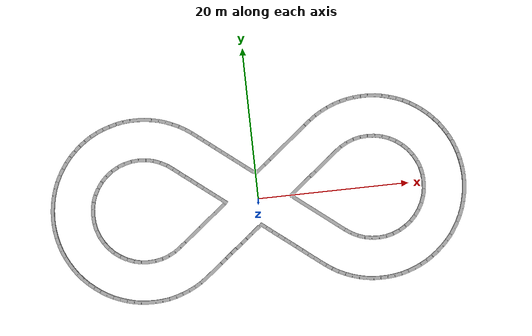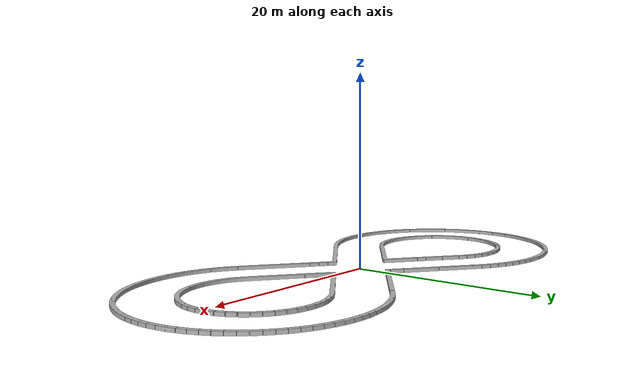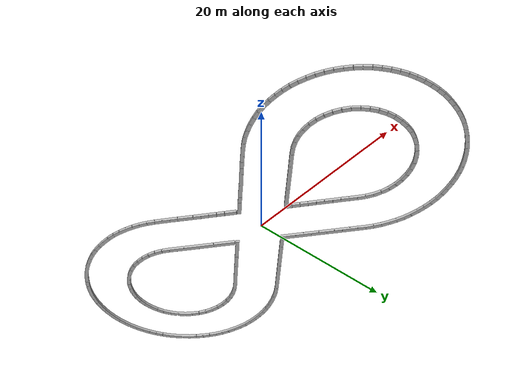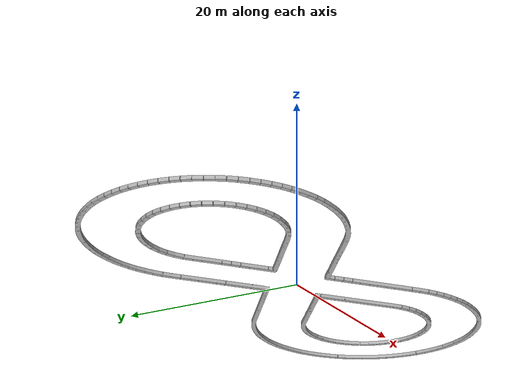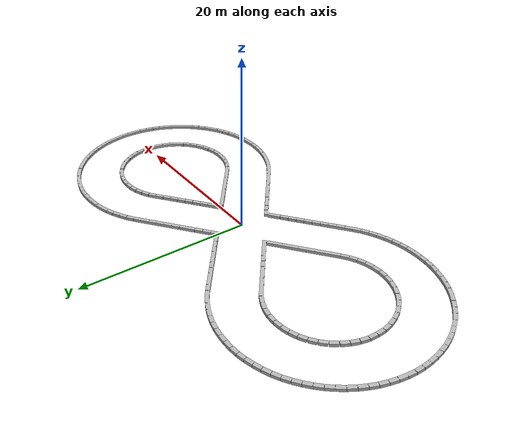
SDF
<?xml version='1.0'?>
<sdf version='1.6'>
  <model name='AVCCourseBoundary'>
    <link name='link_0'>
      <pose frame=''>0 0 0 0 0 0</pose>
      <visual name='visual'>
        <geometry>
          <mesh>
            <uri>model://AVCCourseBoundary/AVCHayBales.dae</uri>
          </mesh>
        </geometry>
      </visual>
      <collision name='collision'>
        <geometry>
          <mesh>
            <uri>model://AVCCourseBoundary/AVCHayBales.dae</uri>
          </mesh>
        </geometry>
      </collision>
    </link>
    <static>true</static>
    <allow_auto_disable>1</allow_auto_disable>
  </model>
</sdf>
